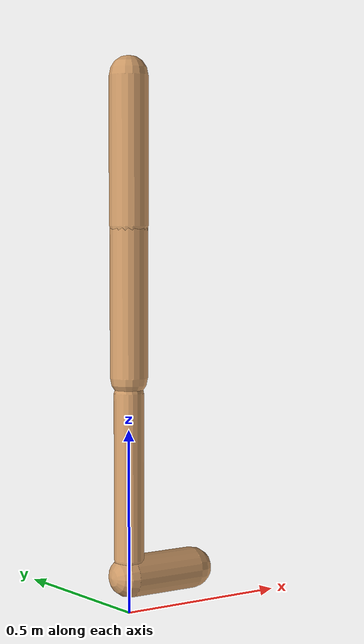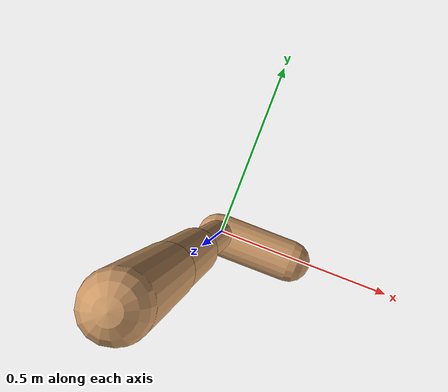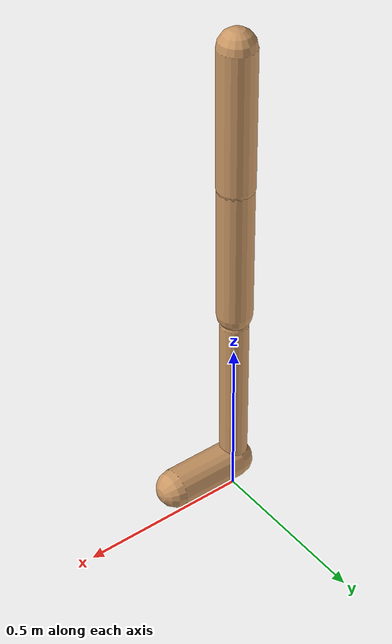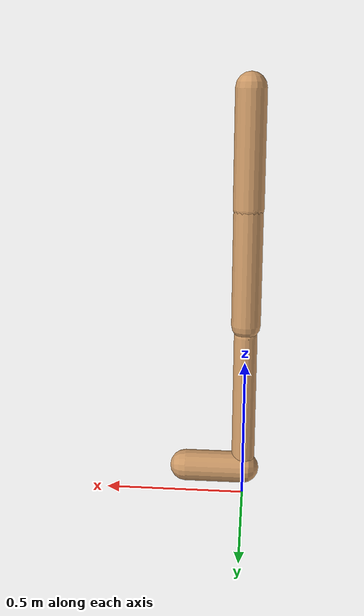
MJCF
<mujoco model="walker2d">
  <compiler angle="degree" coordinate="global" inertiafromgeom="true" />
  <default>
    <joint armature="0.01" damping=".1" limited="true" />
    <geom conaffinity="0" condim="3" contype="1" density="1000" friction="0.8 .1 .1" rgba="0.8 0.6 .4 1" />
  </default>
  <option integrator="RK4" timestep="0.002" />
  <worldbody>

    <body name="torso" pos="0 0 -0.0862417898880801">
      <joint armature="0" axis="1 0 0" damping="0" limited="false" name="ignorex" pos="0 0 0" stiffness="0" type="slide" />
      <joint armature="0" axis="0 0 1" damping="0" limited="false" name="ignorez" pos="0 0 0" ref="1.25" stiffness="0" type="slide" />
      <joint armature="0" axis="0 1 0" damping="0" limited="false" name="ignorey" pos="0 0 0" stiffness="0" type="hinge" />
      <geom fromto="0 0 1.45 0 0 1.05" name="torso_geom" size="0.05300222021510399" type="capsule" />
      <body name="thigh">
        <joint axis="0 -1 0" name="thigh_joint" pos="0 0 1.05" range="-150 0" type="hinge" />
        <geom fromto="0.0 0.0 1.05 0.0 0.0 0.6408513741575116" name="thigh_geom" size="0.051185034422129995" type="capsule" />
        <body name="leg" pos="0.0 0.0 0.04085137415751161">
          <joint axis="0 -1 0" name="leg_joint" pos="0 0 0.6" range="-150 0" type="hinge" />
          <geom fromto="0.0 0.0 0.6 0.0 0.0 0.1453904157305685" name="leg_geom" size="0.040948027537704" type="capsule" />
          <body name="foot" pos="0.0 0.0 0.045390415730568484">
            <joint axis="0 -1 0" name="foot_joint" pos="0 0 0.1" range="-45 45" type="hinge" />
            <geom fromto="-0.0 0.0 0.09999999999999999 0.20801473101195095 0.0 0.09999999999999999" name="foot_geom" size="0.056814931943319436" type="capsule" />
          </body>
        </body>
      </body>

      <body name="thigh_left">
        <joint axis="0 -1 0" name="thigh_left_joint" pos="0 0 1.05" range="-150 0" type="hinge" />
        <geom fromto="0.0 0.0 1.05 0.0 0.0 0.6408513741575116" name="thigh_left_geom" rgba=".7 .3 .6 1" size="0.051185034422129995" type="capsule" />
        <body name="leg_left" pos="0.0 0.0 0.04085137415751161">
          <joint axis="0 -1 0" name="leg_left_joint" pos="0 0 0.6" range="-150 0" type="hinge" />
          <geom fromto="0.0 0.0 0.6 0.0 0.0 0.1453904157305685" name="leg_left_geom" rgba=".7 .3 .6 1" size="0.040948027537704" type="capsule" />
          <body name="foot_left" pos="0.0 0.0 0.045390415730568484">
            <joint axis="0 -1 0" name="foot_left_joint" pos="0 0 0.1" range="-45 45" type="hinge" />
            <geom fromto="-0.0 0.0 0.09999999999999999 0.20801473101195095 0.0 0.09999999999999999" name="foot_left_geom" rgba=".7 .3 .6 1" size="0.056814931943319436" type="capsule" />
          </body>
        </body>
      </body>
    </body>
  </worldbody>
  <actuator>

    <motor ctrllimited="true" ctrlrange="-1.0 1.0" gear="100" joint="thigh_joint" />
    <motor ctrllimited="true" ctrlrange="-1.0 1.0" gear="100" joint="leg_joint" />
    <motor ctrllimited="true" ctrlrange="-1.0 1.0" gear="100" joint="foot_joint" />
    <motor ctrllimited="true" ctrlrange="-1.0 1.0" gear="100" joint="thigh_left_joint" />
    <motor ctrllimited="true" ctrlrange="-1.0 1.0" gear="100" joint="leg_left_joint" />
    <motor ctrllimited="true" ctrlrange="-1.0 1.0" gear="100" joint="foot_left_joint" />

  </actuator>
</mujoco>
